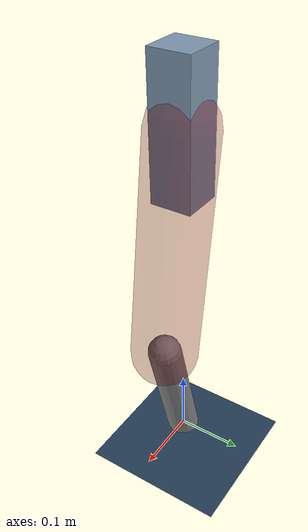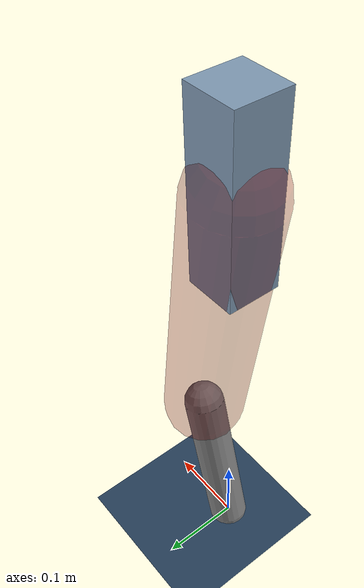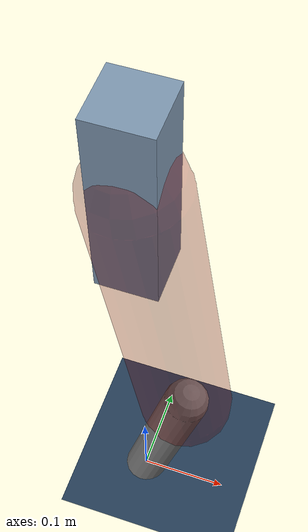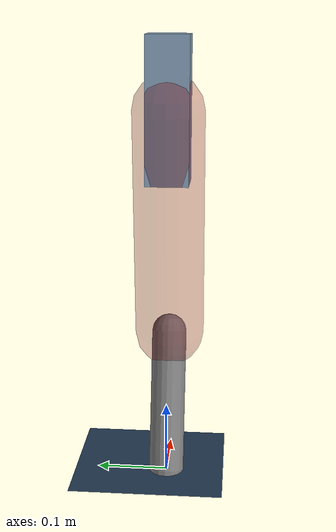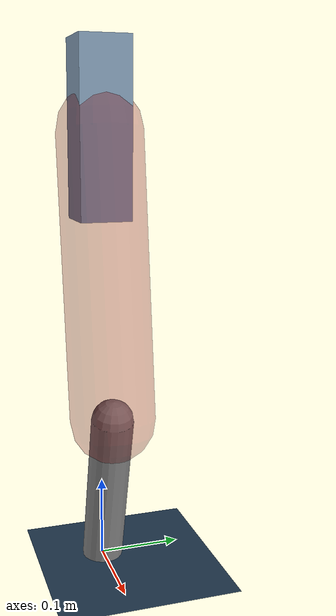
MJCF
<mujoco model="Hopper2D">
	<compiler inertiafromgeom="true" angle="radian" />
	<option timestep="0.001" integrator="implicit" cone="elliptic" solver="Newton" tolerance="1e-10" />

	<default>
		<geom contype="1" conaffinity="1" condim="3" friction="2 0.005 0.0001" solref="0.005 1" />
		<joint limited="true" damping="0.1" />
	</default>

	<asset>
		<texture name="skybox" type="skybox" builtin="gradient" rgb1=".4 .6 .8" rgb2="0 0 0" width="800" height="800" />
		<texture name="grid" type="2d" builtin="checker" rgb1=".1 .2 .3" rgb2=".2 .3 .4" width="300" height="300" mark="edge" markrgb=".2 .3 .4" />
		<material name="ground" texture="grid" texrepeat="1 1" texuniform="true" reflectance="0.1" />
		<material name="leg" rgba="0.5 0.6 0.7 1" />
	</asset>

	<worldbody>

		<geom name="floor" type="plane" size="5 5 0.25" material="ground" />

		<light directional="false" diffuse="0.8 0.8 0.8" specular="0.3 0.3 0.3" pos="0 0 2" dir="0 0 -1" />
		<light mode="targetbodycom" target="base" directional="false" diffuse="0.8 0.8 0.8" specular="0.3 0.3 0.3" pos="0 0 2" dir="0 0 -1" />

		<camera name="fixed" pos="0 -2 1" xyaxes="1 0 0 0 0 1" />
		<camera name="tracking" mode="trackcom" pos="0 -3 1" />

		<body name="root" pos="0 0 0.5260744171607614">
			<joint name="slide_x" type="slide" axis="1 0 0" range="-100 100" />
			<joint name="slide_z" type="slide" axis="0 0 1" range="0 10" />

			<body name="base" pos="0 0 0">
				<geom name="torso" type="box" size="0.03 0.03 0.1" mass="2.175" material="leg" />

				<body name="link1" pos="0 0 0" euler="0 1.4196210613806153 0">
					<joint type="hinge" axis="0 -1 0" pos="0 0 0" name="hinge1" limited="true" range="-3.14 3.14" stiffness="0" damping="0.1" />
					<geom name="thigh" type="capsule" fromto="0 0 0 0.33192146883421875 0 0" size="0.05" rgba="0.5 0 0 0.3" mass="1.0761801127358124" />

					<body name="link2" pos="0.33192146883421875 0 0" euler="0 0.398543055460338 0">
						<joint type="hinge" axis="0 -1 0" pos="0 0 0" name="hinge2" limited="true" range="-3.14 3.14" stiffness="0" damping="0.1" />
						<geom name="shank" type="capsule" fromto="0 0 0 0.20415294832654263 0 0" size="0.025" mass="0.4044223586612341" />

					</body>
				</body>
			</body>
		</body>
	</worldbody>

	<actuator>
		<motor name="torque1" joint="hinge1" ctrlrange="-85.8108205202741 85.8108205202741" ctrllimited="true" gear="1" />
		<motor name="torque2" joint="hinge2" ctrlrange="-94.30724570378871 94.30724570378871" ctrllimited="true" gear="1" />
	</actuator>
</mujoco>
